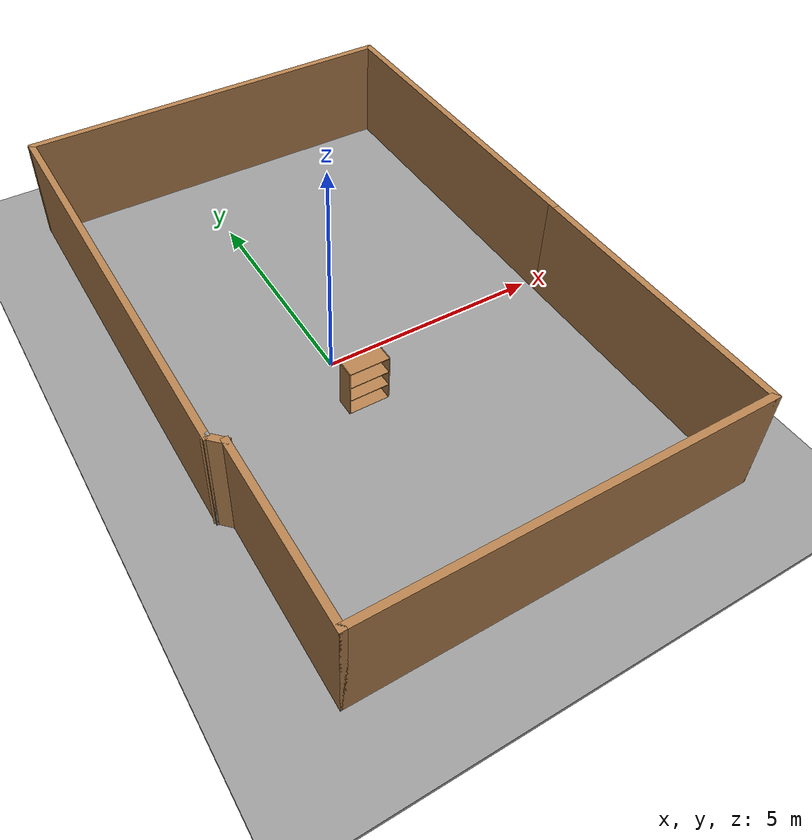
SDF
<sdf version="1.7">
 <world name="default">
  <light name="sun" type="directional">
   <pose>0 0 10 0 -0 0</pose>
   <diffuse>0.8 0.8 0.8 1</diffuse>
   <specular>0.2 0.2 0.2 1</specular>
   <attenuation>
    <range>1000</range>
    <constant>0.9</constant>
    <linear>0.01</linear>
    <quadratic>0.001</quadratic>
   </attenuation>
   <direction>-0.5 0.1 -0.9</direction>
   <spot><inner_angle>0</inner_angle><outer_angle>0</outer_angle><falloff>0</falloff></spot>
  </light>
  <model name="ground_plane">
   <static>1</static>
   <link name="link">
    <collision name="collision">
     <geometry><plane><normal>0 0 1</normal><size>100 100</size></plane></geometry>
     <surface><friction><ode><mu>100</mu><mu2>50</mu2></ode></friction></surface>
    </collision>
    <visual name="visual">
     <cast_shadows>0</cast_shadows>
     <geometry><plane><normal>0 0 1</normal><size>100 100</size></plane></geometry>
     <material>
      <script><uri>file://media/materials/scripts/gazebo.material</uri><name>Gazebo/Grey</name></script>
     </material>
    </visual>
   </link>
  </model>
  <gravity>0 0 -9.8</gravity>
  <magnetic_field>6e-06 2.3e-05 -4.2e-05</magnetic_field>
  <atmosphere type="adiabatic"/>
  <physics type="ode">
   <max_step_size>0.001</max_step_size>
   <real_time_factor>1</real_time_factor>
   <real_time_update_rate>1000</real_time_update_rate>
  </physics>
  <scene><ambient>0.4 0.4 0.4 1</ambient><background>0.7 0.7 0.7 1</background><shadows>1</shadows></scene>
  <audio><device>default</device></audio>
  <spherical_coordinates>
   <surface_model>EARTH_WGS84</surface_model>
   <latitude_deg>0</latitude_deg>
   <longitude_deg>0</longitude_deg>
   <elevation>0</elevation>
   <heading_deg>0</heading_deg>
  </spherical_coordinates>
  <model name="bookshelf">
   <static>1</static>
   <link name="link">
    <inertial><mass>1</mass></inertial>
    <collision name="back">
     <pose>0 0.005 0.6 0 -0 0</pose>
     <geometry><box><size>0.9 0.01 1.2</size></box></geometry>
    </collision>
    <visual name="visual1">
     <pose>0 0.005 0.6 0 -0 0</pose>
     <geometry><box><size>0.9 0.01 1.2</size></box></geometry>
     <material>
      <script><uri>file://media/materials/scripts/gazebo.material</uri><name>Gazebo/Wood</name></script>
     </material>
    </visual>
    <collision name="left_side">
     <pose>0.45 -0.195 0.6 0 -0 0</pose>
     <geometry><box><size>0.02 0.4 1.2</size></box></geometry>
    </collision>
    <visual name="visual2">
     <pose>0.45 -0.195 0.6 0 -0 0</pose>
     <geometry><box><size>0.02 0.4 1.2</size></box></geometry>
     <material>
      <script><uri>file://media/materials/scripts/gazebo.material</uri><name>Gazebo/Wood</name></script>
     </material>
    </visual>
    <collision name="right_side">
     <pose>-0.45 -0.195 0.6 0 -0 0</pose>
     <geometry><box><size>0.02 0.4 1.2</size></box></geometry>
    </collision>
    <visual name="visual3">
     <pose>-0.45 -0.195 0.6 0 -0 0</pose>
     <geometry><box><size>0.02 0.4 1.2</size></box></geometry>
     <material>
      <script><uri>file://media/materials/scripts/gazebo.material</uri><name>Gazebo/Wood</name></script>
     </material>
    </visual>
    <collision name="bottom">
     <pose>0 -0.195 0.03 0 -0 0</pose>
     <geometry><box><size>0.88 0.4 0.06</size></box></geometry>
    </collision>
    <visual name="visual4">
     <pose>0 -0.195 0.03 0 -0 0</pose>
     <geometry><box><size>0.88 0.4 0.06</size></box></geometry>
     <material>
      <script><uri>file://media/materials/scripts/gazebo.material</uri><name>Gazebo/Wood</name></script>
     </material>
    </visual>
    <collision name="top">
     <pose>0 -0.195 1.19 0 -0 0</pose>
     <geometry><box><size>0.88 0.4 0.02</size></box></geometry>
    </collision>
    <visual name="visual5">
     <pose>0 -0.195 1.19 0 -0 0</pose>
     <geometry><box><size>0.88 0.4 0.02</size></box></geometry>
     <material>
      <script><uri>file://media/materials/scripts/gazebo.material</uri><name>Gazebo/Wood</name></script>
     </material>
    </visual>
    <collision name="low_shelf">
     <pose>0 -0.195 0.43 0 -0 0</pose>
     <geometry><box><size>0.88 0.4 0.02</size></box></geometry>
    </collision>
    <visual name="visual6">
     <pose>0 -0.195 0.43 0 -0 0</pose>
     <geometry><box><size>0.88 0.4 0.02</size></box></geometry>
     <material>
      <script><uri>file://media/materials/scripts/gazebo.material</uri><name>Gazebo/Wood</name></script>
     </material>
    </visual>
    <collision name="high_shelf">
     <pose>0 -0.195 0.8 0 -0 0</pose>
     <geometry><box><size>0.88 0.4 0.02</size></box></geometry>
    </collision>
    <visual name="visual7">
     <pose>0 -0.195 0.8 0 -0 0</pose>
     <geometry><box><size>0.88 0.4 0.02</size></box></geometry>
     <material>
      <script><uri>file://media/materials/scripts/gazebo.material</uri><name>Gazebo/Wood</name></script>
     </material>
    </visual>
   </link>
   <pose>0.100259 -1.00599 0 0 -0 0</pose>
  </model>
  <model name="ground_plane_0">
   <static>1</static>
   <link name="link">
    <collision name="collision">
     <geometry><plane><normal>0 0 1</normal><size>100 100</size></plane></geometry>
     <surface><friction><ode><mu>100</mu><mu2>50</mu2></ode></friction></surface>
    </collision>
    <visual name="visual">
     <cast_shadows>0</cast_shadows>
     <geometry><plane><normal>0 0 1</normal><size>100 100</size></plane></geometry>
     <material>
      <script><uri>file://media/materials/scripts/gazebo.material</uri><name>Gazebo/Grey</name></script>
     </material>
    </visual>
   </link>
   <pose>2.79272 -6.80419 0 0 -0 0</pose>
  </model>
  <model name="test2.world">
   <pose>0.729467 0.36 0 0 -0 0</pose>
   <link name="Wall_0">
    <collision name="Wall_0_Collision">
     <geometry><box><size>4 0.15 2.5</size></box></geometry>
     <pose>0 0 1.25 0 -0 0</pose>
    </collision>
    <visual name="Wall_0_Visual">
     <pose>0 0 1.25 0 -0 0</pose>
     <geometry><box><size>4 0.15 2.5</size></box></geometry>
     <material>
      <script><uri>file://media/materials/scripts/gazebo.material</uri><name>Gazebo/Wood</name></script>
      <ambient>1 1 1 1</ambient>
     </material>
     <meta><layer>0</layer></meta>
    </visual>
    <pose>-4.15947 -4.925 0 0 -0 -1.5708</pose>
   </link>
   <link name="Wall_1">
    <collision name="Wall_1_Collision">
     <geometry><box><size>8.75 0.15 2.5</size></box></geometry>
     <pose>0 0 1.25 0 -0 0</pose>
    </collision>
    <visual name="Wall_1_Visual">
     <pose>0 0 1.25 0 -0 0</pose>
     <geometry><box><size>8.75 0.15 2.5</size></box></geometry>
     <material>
      <script><uri>file://media/materials/scripts/gazebo.material</uri><name>Gazebo/Wood</name></script>
      <ambient>1 1 1 1</ambient>
     </material>
     <meta><layer>0</layer></meta>
    </visual>
    <pose>0.140533 -6.85 0 0 -0 0</pose>
   </link>
   <link name="Wall_2">
    <collision name="Wall_2_Collision">
     <geometry><box><size>6.25 0.15 2.5</size></box></geometry>
     <pose>0 0 1.25 0 -0 0</pose>
    </collision>
    <visual name="Wall_2_Visual">
     <pose>0 0 1.25 0 -0 0</pose>
     <geometry><box><size>6.25 0.15 2.5</size></box></geometry>
     <material>
      <script><uri>file://media/materials/scripts/gazebo.material</uri><name>Gazebo/Wood</name></script>
      <ambient>1 1 1 1</ambient>
     </material>
     <meta><layer>0</layer></meta>
    </visual>
    <pose>4.44053 -3.8 0 0 -0 1.5708</pose>
   </link>
   <link name="Wall_3">
    <collision name="Wall_3_Collision">
     <geometry><box><size>7.75 0.15 2.5</size></box></geometry>
     <pose>0 0 1.25 0 -0 0</pose>
    </collision>
    <visual name="Wall_3_Visual">
     <pose>0 0 1.25 0 -0 0</pose>
     <geometry><box><size>7.75 0.15 2.5</size></box></geometry>
     <material>
      <script><uri>file://media/materials/scripts/gazebo.material</uri><name>Gazebo/Wood</name></script>
      <ambient>1 1 1 1</ambient>
     </material>
     <meta><layer>0</layer></meta>
    </visual>
    <pose>4.44053 3.05 0 0 -0 1.5708</pose>
   </link>
   <link name="Wall_4">
    <collision name="Wall_4_Collision">
     <geometry><box><size>9 0.15 2.5</size></box></geometry>
     <pose>0 0 1.25 0 -0 0</pose>
    </collision>
    <visual name="Wall_4_Visual">
     <pose>0 0 1.25 0 -0 0</pose>
     <geometry><box><size>9 0.15 2.5</size></box></geometry>
     <material>
      <script><uri>file://media/materials/scripts/gazebo.material</uri><name>Gazebo/Wood</name></script>
      <ambient>1 1 1 1</ambient>
     </material>
     <meta><layer>0</layer></meta>
    </visual>
    <pose>0.015533 6.85 0 0 -0 3.14159</pose>
   </link>
   <link name="Wall_5">
    <collision name="Wall_5_Collision">
     <geometry><box><size>9.75 0.15 2.5</size></box></geometry>
     <pose>0 0 1.25 0 -0 0</pose>
    </collision>
    <visual name="Wall_5_Visual">
     <pose>0 0 1.25 0 -0 0</pose>
     <geometry><box><size>9.75 0.15 2.5</size></box></geometry>
     <material>
      <script><uri>file://media/materials/scripts/gazebo.material</uri><name>Gazebo/Wood</name></script>
      <ambient>1 1 1 1</ambient>
     </material>
     <meta><layer>0</layer></meta>
    </visual>
    <pose>-4.40947 2.05 0 0 -0 -1.5708</pose>
   </link>
   <link name="Wall_6">
    <collision name="Wall_6_Collision">
     <geometry><box><size>0.15 0.15 2.5</size></box></geometry>
     <pose>0 0 1.25 0 -0 0</pose>
    </collision>
    <visual name="Wall_6_Visual">
     <pose>0 0 1.25 0 -0 0</pose>
     <geometry><box><size>0.15 0.15 2.5</size></box></geometry>
     <material>
      <script><uri>file://media/materials/scripts/gazebo.material</uri><name>Gazebo/Grey</name></script>
      <ambient>1 1 1 1</ambient>
     </material>
     <meta><layer>0</layer></meta>
    </visual>
    <pose>-4.40947 -2.75 0 0 -0 0</pose>
   </link>
   <link name="Wall_7">
    <collision name="Wall_7_Collision">
     <geometry><box><size>0.503553 0.15 2.5</size></box></geometry>
     <pose>0 0 1.25 0 -0 0</pose>
    </collision>
    <visual name="Wall_7_Visual">
     <pose>0 0 1.25 0 -0 0</pose>
     <geometry><box><size>0.503553 0.15 2.5</size></box></geometry>
     <material>
      <script><uri>file://media/materials/scripts/gazebo.material</uri><name>Gazebo/Wood</name></script>
      <ambient>1 1 1 1</ambient>
     </material>
     <meta><layer>0</layer></meta>
    </visual>
    <pose>-4.28447 -2.875 0 0 -0 -0.785398</pose>
   </link>
   <static>1</static>
  </model>
 </world>
</sdf>
